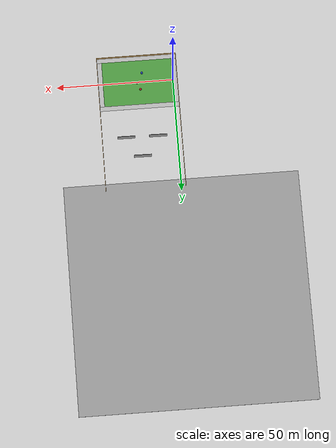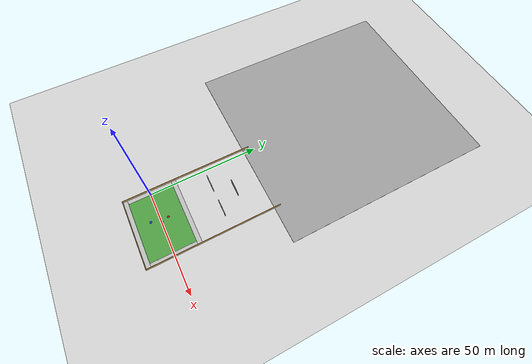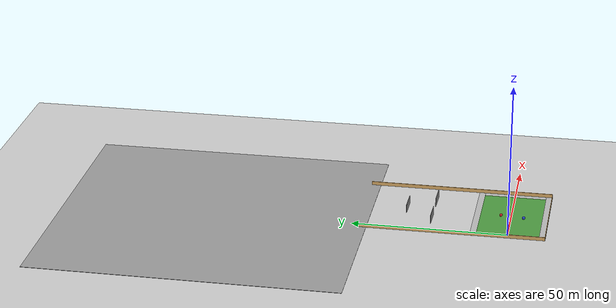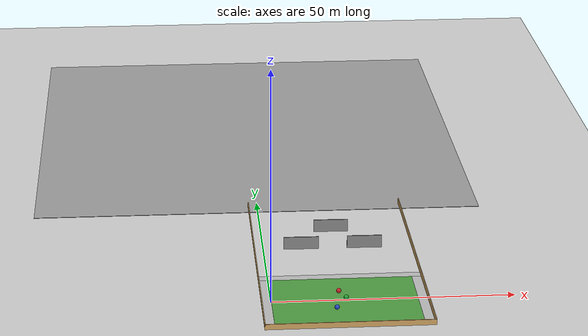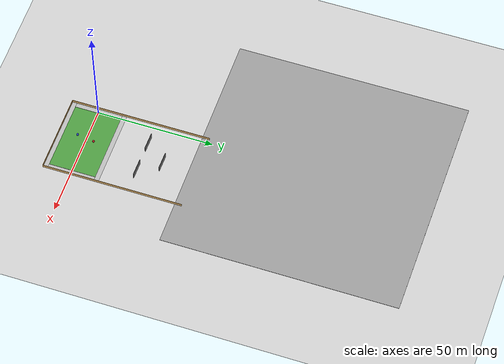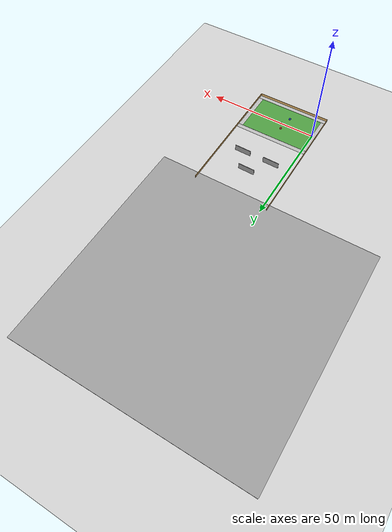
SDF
<sdf version="1.6">
 <world name="default">
  <light name="sun" type="directional">
   <pose>0 0 10 0 -0 0</pose>
   <diffuse>0.8 0.8 0.8 1</diffuse>
   <specular>0.2 0.2 0.2 1</specular>
   <attenuation>
    <range>1000</range>
    <constant>0.9</constant>
    <linear>0.01</linear>
    <quadratic>0.001</quadratic>
   </attenuation>
   <direction>-0.5 0.1 -0.9</direction>
  </light>
  <model name="ground_plane">
   <static>1</static>
   <link name="link">
    <collision name="collision">
     <geometry><plane><normal>0 0 1</normal><size>100 100</size></plane></geometry>
     <surface>
      <contact><collide_bitmask>65535</collide_bitmask></contact>
      <friction><ode><mu>100</mu><mu2>50</mu2></ode></friction>
     </surface>
    </collision>
    <visual name="visual">
     <cast_shadows>0</cast_shadows>
     <geometry><plane><normal>0 0 1</normal><size>100 100</size></plane></geometry>
     <material>
      <script><uri>file://media/materials/scripts/gazebo.material</uri><name>Gazebo/Grey</name></script>
     </material>
    </visual>
   </link>
  </model>
  <gravity>0 0 -9.8</gravity>
  <magnetic_field>6e-06 2.3e-05 -4.2e-05</magnetic_field>
  <atmosphere type="adiabatic"/>
  <physics name="default_physics" default="0" type="ode">
   <max_step_size>0.001</max_step_size>
   <real_time_factor>1</real_time_factor>
   <real_time_update_rate>1000</real_time_update_rate>
  </physics>
  <scene><ambient>0.4 0.4 0.4 1</ambient><background>0.7 0.7 0.7 1</background><shadows>1</shadows></scene>
  <audio><device>default</device></audio>
  <spherical_coordinates>
   <surface_model>EARTH_WGS84</surface_model>
   <latitude_deg>0</latitude_deg>
   <longitude_deg>0</longitude_deg>
   <elevation>0</elevation>
   <heading_deg>0</heading_deg>
  </spherical_coordinates>
  <model name="unit_sphere">
   <pose>14.1214 3.31801 0.51 0 -0 0</pose>
   <link name="link">
    <inertial>
     <mass>1</mass>
     <inertia><ixx>0.1</ixx><ixy>0</ixy><ixz>0</ixz><iyy>0.1</iyy><iyz>0</iyz><izz>0.1</izz></inertia>
    </inertial>
    <collision name="collision"><geometry><sphere><radius>0.5</radius></sphere></geometry></collision>
    <visual name="visual">
     <geometry><sphere><radius>0.5</radius></sphere></geometry>
     <material>
      <script><name>Gazebo/Red</name><uri>file://media/materials/scripts/gazebo.material</uri></script>
     </material>
    </visual>
   </link>
  </model>
  <model name="unit_sphere_0">
   <pose>15.3428 0.263916 0.51 0 -0 0</pose>
   <link name="link">
    <inertial>
     <mass>1</mass>
     <inertia><ixx>0.1</ixx><ixy>0</ixy><ixz>0</ixz><iyy>0.1</iyy><iyz>0</iyz><izz>0.1</izz></inertia>
    </inertial>
    <collision name="collision"><geometry><sphere><radius>0.5</radius></sphere></geometry></collision>
    <visual name="visual">
     <geometry><sphere><radius>0.5</radius></sphere></geometry>
     <material>
      <script><name>Gazebo/Green</name><uri>file://media/materials/scripts/gazebo.material</uri></script>
     </material>
    </visual>
   </link>
  </model>
  <model name="unit_sphere_1">
   <pose>13.0665 -4.08041 0.51 0 -0 0</pose>
   <link name="link">
    <inertial>
     <mass>1</mass>
     <inertia><ixx>0.1</ixx><ixy>0</ixy><ixz>0</ixz><iyy>0.1</iyy><iyz>0</iyz><izz>0.1</izz></inertia>
    </inertial>
    <collision name="collision"><geometry><sphere><radius>0.5</radius></sphere></geometry></collision>
    <visual name="visual">
     <geometry><sphere><radius>0.5</radius></sphere></geometry>
     <material>
      <script><name>Gazebo/Blue</name><uri>file://media/materials/scripts/gazebo.material</uri></script>
     </material>
    </visual>
   </link>
  </model>
  <model name="ground_plane_0">
   <static>1</static>
   <link name="link">
    <collision name="collision">
     <geometry><plane><normal>0 0 1</normal><size>100 100</size></plane></geometry>
     <surface><friction><ode><mu>100</mu><mu2>50</mu2></ode></friction></surface>
    </collision>
    <visual name="visual">
     <cast_shadows>0</cast_shadows>
     <geometry><plane><normal>0 0 1</normal><size>100 100</size></plane></geometry>
     <material>
      <script><uri>file://media/materials/scripts/gazebo.material</uri><name>Gazebo/Grey</name></script>
     </material>
    </visual>
   </link>
   <pose>0.033354 95.0033 0 0 -0 0</pose>
  </model>
  <model name="robocup_3d_field">
   <static>1</static>
   <link name="field">
    <pose>0 0 0.01 0 -0 0</pose>
    <collision name="collision">
     <geometry><plane><normal>0 0 1</normal><size>30 20</size></plane></geometry>
     <surface><friction><ode><mu>100</mu><mu2>50</mu2></ode></friction></surface>
    </collision>
    <visual name="base1">
     <pose>0 11 0.001 0 -0 0</pose>
     <cast_shadows>0</cast_shadows>
     <geometry><plane><normal>0 0 1</normal><size>34 2</size></plane></geometry>
     <material>
      <script>
       <uri>model://robocup_3Dsim_field/materials/scripts/</uri>
       <uri>model://robocup_3Dsim_field/materials/textures/</uri>
       <name>RoboCup/FieldBorder</name>
      </script>
     </material>
    </visual>
    <visual name="base2">
     <pose>0 -11 0.001 0 -0 0</pose>
     <cast_shadows>0</cast_shadows>
     <geometry><plane><normal>0 0 1</normal><size>34 2</size></plane></geometry>
     <material>
      <script>
       <uri>model://robocup_3Dsim_field/materials/scripts/</uri>
       <uri>model://robocup_3Dsim_field/materials/textures/</uri>
       <name>RoboCup/FieldBorder</name>
      </script>
     </material>
    </visual>
    <visual name="base3">
     <pose>16 0 0.001 0 -0 0</pose>
     <cast_shadows>0</cast_shadows>
     <geometry><plane><normal>0 0 1</normal><size>2 20</size></plane></geometry>
     <material>
      <script>
       <uri>model://robocup_3Dsim_field/materials/scripts/</uri>
       <uri>model://robocup_3Dsim_field/materials/textures/</uri>
       <name>RoboCup/FieldBorder</name>
      </script>
     </material>
    </visual>
    <visual name="base4">
     <pose>-16 0 0.001 0 -0 0</pose>
     <cast_shadows>0</cast_shadows>
     <geometry><plane><normal>0 0 1</normal><size>2 20</size></plane></geometry>
     <material>
      <script>
       <uri>model://robocup_3Dsim_field/materials/scripts/</uri>
       <uri>model://robocup_3Dsim_field/materials/textures/</uri>
       <name>RoboCup/FieldBorder</name>
      </script>
     </material>
    </visual>
    <visual name="carpet">
     <cast_shadows>0</cast_shadows>
     <geometry><plane><normal>0 0 1</normal><size>30 20</size></plane></geometry>
     <material>
      <script>
       <uri>model://robocup_3Dsim_field/materials/scripts/</uri>
       <uri>model://robocup_3Dsim_field/materials/textures/</uri>
       <name>RoboCup/Grass</name>
      </script>
     </material>
    </visual>
   </link>
   <pose>15.0498 -0.030213 0 0 -0 0</pose>
  </model>
  <model name="build5.16">
   <pose>15.058 18 0 0 -0 0</pose>
   <link name="Wall_0">
    <collision name="Wall_0_Collision">
     <geometry><box><size>60.15 0.15 1.2</size></box></geometry>
     <pose>0 0 0.6 0 -0 0</pose>
    </collision>
    <visual name="Wall_0_Visual">
     <pose>0 0 0.6 0 -0 0</pose>
     <geometry><box><size>60.15 0.15 1.2</size></box></geometry>
     <material>
      <script><uri>file://media/materials/scripts/gazebo.material</uri><name>Gazebo/Grey</name></script>
      <ambient>0.913725 0.72549 0.431373 1</ambient>
     </material>
     <meta><layer>0</layer></meta>
    </visual>
    <pose>-17.027 0 0 0 -0 1.5708</pose>
   </link>
   <link name="Wall_3">
    <collision name="Wall_3_Collision">
     <geometry><box><size>60.15 0.15 1.2</size></box></geometry>
     <pose>0 0 0.6 0 -0 0</pose>
    </collision>
    <visual name="Wall_3_Visual">
     <pose>0 0 0.6 0 -0 0</pose>
     <geometry><box><size>60.15 0.15 1.2</size></box></geometry>
     <material>
      <script><uri>file://media/materials/scripts/gazebo.material</uri><name>Gazebo/Grey</name></script>
      <ambient>0.913725 0.72549 0.431373 1</ambient>
     </material>
     <meta><layer>0</layer></meta>
    </visual>
    <pose>17.027 0 0 0 -0 1.5708</pose>
   </link>
   <link name="Wall_5">
    <collision name="Wall_5_Collision">
     <geometry><box><size>34.204 0.15 1.2</size></box></geometry>
     <pose>0 0 0.6 0 -0 0</pose>
    </collision>
    <visual name="Wall_5_Visual">
     <pose>0 0 0.6 0 -0 0</pose>
     <geometry><box><size>34.204 0.15 1.2</size></box></geometry>
     <material>
      <script><uri>file://media/materials/scripts/gazebo.material</uri><name>Gazebo/Grey</name></script>
      <ambient>0.913725 0.72549 0.431373 1</ambient>
     </material>
     <meta><layer>0</layer></meta>
    </visual>
    <pose>-0 -30 0 0 -0 0</pose>
   </link>
   <static>1</static>
  </model>
  <model name="grey_wall_clone_clone_clone_clone">
   <static>1</static>
   <link name="link">
    <pose>0 0 1.4 0 -0 0</pose>
    <collision name="collision"><geometry><box><size>7.5 0.2 2.8</size></box></geometry></collision>
    <visual name="visual">
     <cast_shadows>0</cast_shadows>
     <geometry><box><size>7.5 0.2 2.8</size></box></geometry>
     <material>
      <script>
       <uri>model://grey_wall/materials/scripts</uri>
       <uri>model://grey_wall/materials/textures</uri>
       <name>vrc/grey_wall</name>
      </script>
     </material>
    </visual>
   </link>
   <pose>8.15827 25.0686 0 0 0 -0.012529</pose>
  </model>
  <model name="grey_wall_clone_clone_clone_clone_clone">
   <static>1</static>
   <link name="link">
    <pose>0 0 1.4 0 -0 0</pose>
    <collision name="collision"><geometry><box><size>7.5 0.2 2.8</size></box></geometry></collision>
    <visual name="visual">
     <cast_shadows>0</cast_shadows>
     <geometry><box><size>7.5 0.2 2.8</size></box></geometry>
     <material>
      <script>
       <uri>model://grey_wall/materials/scripts</uri>
       <uri>model://grey_wall/materials/textures</uri>
       <name>vrc/grey_wall</name>
      </script>
     </material>
    </visual>
   </link>
   <pose>21.7858 24.9928 0 0 0 -0.012529</pose>
  </model>
  <model name="grey_wall_clone_clone_clone_clone_clone_0">
   <static>1</static>
   <link name="link">
    <pose>0 0 1.4 0 -0 0</pose>
    <collision name="collision"><geometry><box><size>7.5 0.2 2.8</size></box></geometry></collision>
    <visual name="visual">
     <cast_shadows>0</cast_shadows>
     <geometry><box><size>7.5 0.2 2.8</size></box></geometry>
     <material>
      <script>
       <uri>model://grey_wall/materials/scripts</uri>
       <uri>model://grey_wall/materials/textures</uri>
       <name>vrc/grey_wall</name>
      </script>
     </material>
    </visual>
   </link>
   <pose>15.3543 33.7309 0 0 0 -0.012529</pose>
  </model>
 </world>
</sdf>
